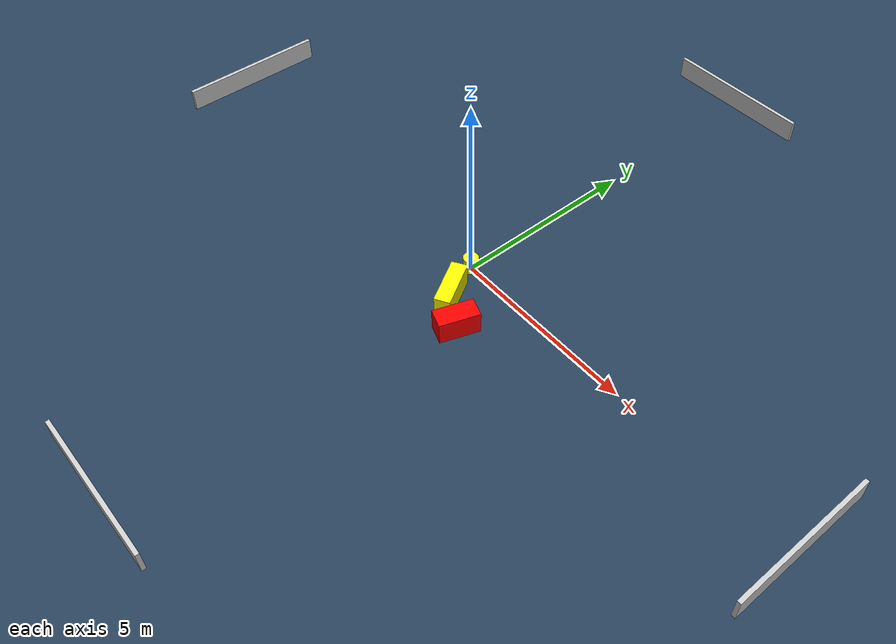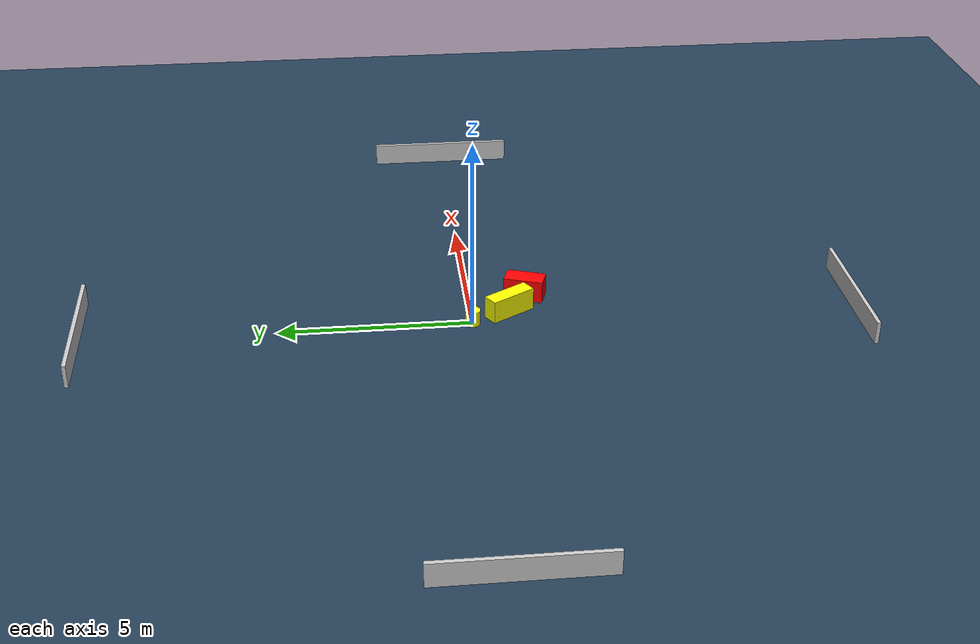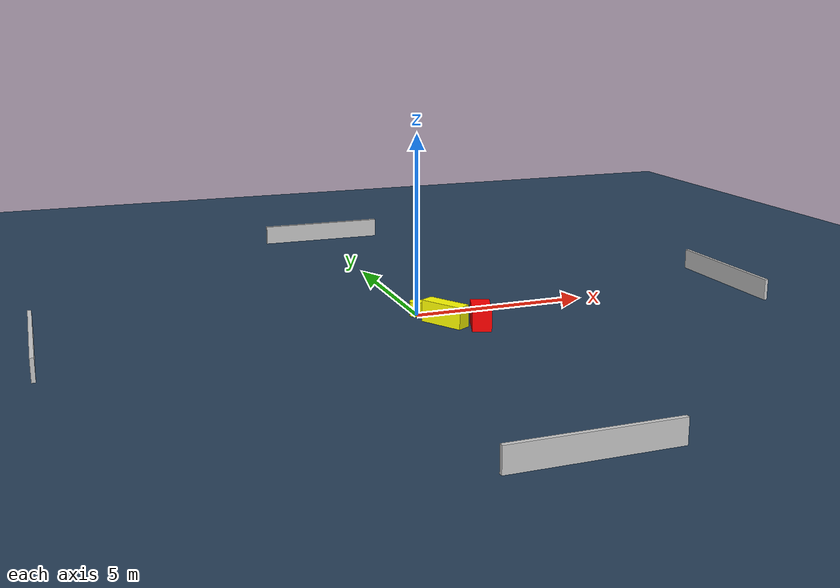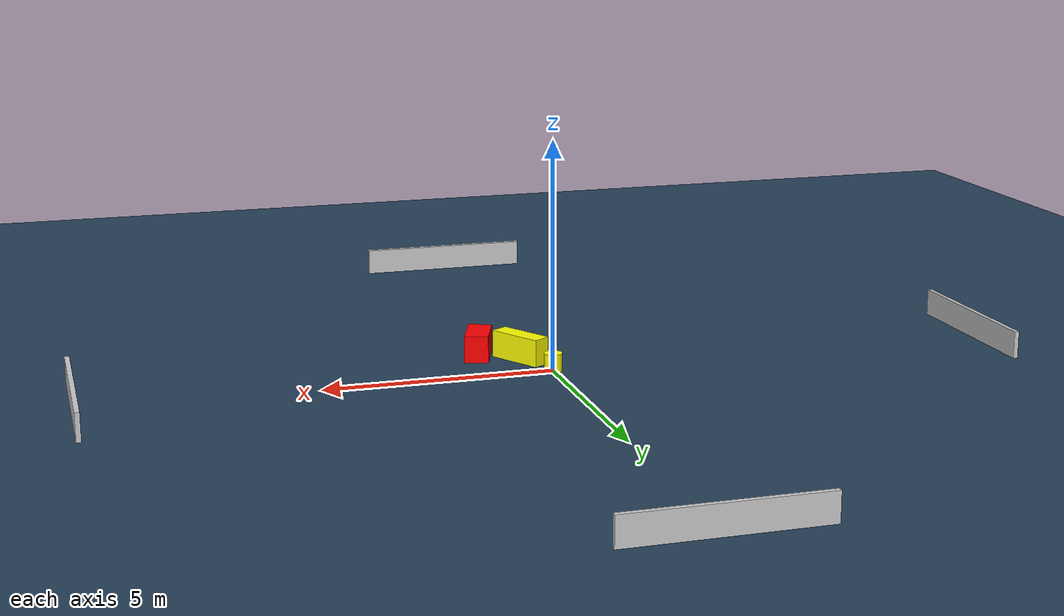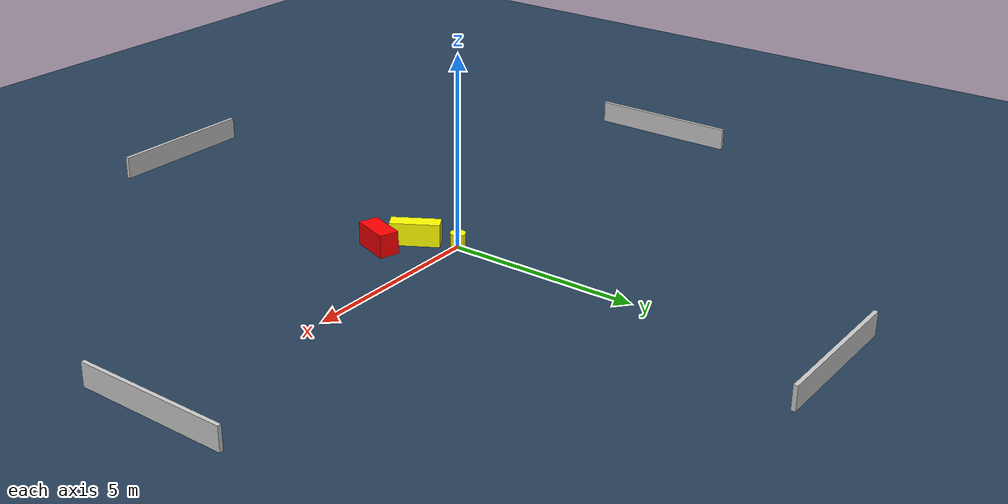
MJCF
<?xml version="1.0" ?>
<mujoco model="generated_environment">
  <option timestep="0.01" integrator="RK4" cone="elliptic"/>
  <default>
    <geom density="1"/>
  </default>
  <asset>
    <texture builtin="gradient" height="3072" name="skybox" rgb1="0.3 0.5 0.7" rgb2="0 0 0" type="skybox" width="512"/>
    <texture builtin="checker" height="300" name="groundplane" rgb1="0.2 0.3 0.4" rgb2="0.1 0.2 0.3" type="2d" width="300"/>
    <material name="groundplane" reflectance="0.2" texrepeat="5 5" texture="groundplane"/>
  </asset>
  <worldbody>
    <light dir="0 0 -1" directional="true" pos="0 0 1.5"/>
    <geom condim="3" friction="0.5 0.005 0.001" material="groundplane" name="floor" pos="0 0 0" size="0 0 0.05" type="plane"/>
    <body name="walls">
      <geom name="wall_1" condim="4" pos="-10.0 0.0 0.3" rgba="0.800000011920929 0.800000011920929 0.800000011920929 1.0" size="0.05 2.0 0.3" type="box"/>
      <geom name="wall_2" condim="4" pos="10.0 0.0 0.3" rgba="0.800000011920929 0.800000011920929 0.800000011920929 1.0" size="0.05 2.0 0.3" type="box"/>
      <geom name="wall_3" condim="4" pos="0.0 -10.0 0.3" rgba="0.800000011920929 0.800000011920929 0.800000011920929 1.0" size="2.0 0.05 0.3" type="box"/>
      <geom name="wall_4" condim="4" pos="0.0 10.0 0.3" rgba="0.800000011920929 0.800000011920929 0.800000011920929 1.0" size="2.0 0.05 0.3" type="box"/>
    </body>
    <body name="robot">
      <joint name="joint_x" type="slide" pos="0 0 0" axis="1 0 0"/>
      <joint name="joint_y" type="slide" pos="0 0 0" axis="0 1 0"/>
      <geom name="robot" type="cylinder" pos="0.0 0.0 0.2" size="0.2 0.2 0.0" mass="5.0" friction="1.0 0.005 0.0001" condim="4" rgba="1.0 1.0 0.0 1.0"/>
    </body>
    <body name="obstacle_1_movable">
      <geom name="obstacle_1_movable" condim="4" pos="0.44386248086691676 -1.000620865993875 0.3" euler="0 0 211.19813495718446" friction="0.0 0.005 0.001" rgba="1.0 1.0 0.0 1.0" size="0.20479558575958348 0.6374455394584517 0.3" type="box" mass="0.1"/>
      <joint type="free"/>
    </body>
    <body name="obstacle_2_static">
      <geom name="obstacle_2_static" condim="4" pos="1.259387103225993 -1.51014425932806 0.3" euler="0 0 70.7370915089442" friction="0.0 0.005 0.001" rgba="1.0 0.0 0.0 1.0" size="0.5157956478056391 0.2588611967032858 0.3" type="box"/>
    </body>
  </worldbody>
  <actuator>
    <motor name="actuator_x" joint="joint_x" gear="1" ctrlrange="-1 1"/>
    <motor name="actuator_y" joint="joint_y" gear="1" ctrlrange="-1 1"/>
  </actuator>
</mujoco>
